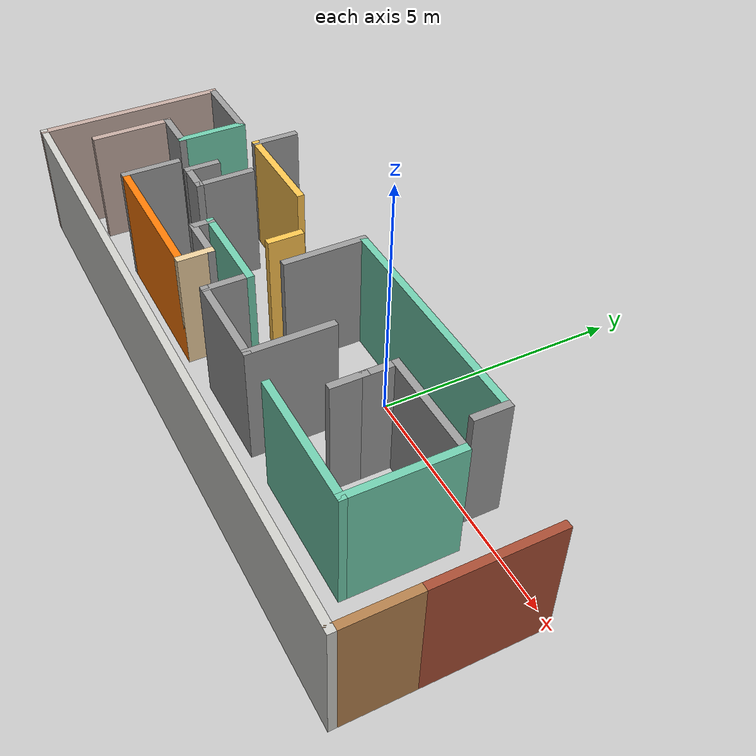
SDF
<?xml version='1.0'?>
<sdf version='1.7'>
  <model name='buiilding'>
    <pose>-1.53307 -1.4404 0 0 -0 0</pose>
    <link name='Wall_0'>
      <collision name='Wall_0_Collision'>
        <geometry>
          <box>
            <size>1.25 0.15 2.5</size>
          </box>
        </geometry>
        <pose>0 0 1.25 0 -0 0</pose>
      </collision>
      <visual name='Wall_0_Visual'>
        <pose>0 0 1.25 0 -0 0</pose>
        <geometry>
          <box>
            <size>1.25 0.15 2.5</size>
          </box>
        </geometry>
        <material>
          <script>
            <uri>file://media/materials/scripts/gazebo.material</uri>
            <name>Gazebo/Grey</name>
          </script>
          <ambient>1 1 1 1</ambient>
        </material>
        <meta>
          <layer>0</layer>
        </meta>
      </visual>
      <pose>-4.45693 -0.789605 0 0 -0 -1.5708</pose>
    </link>
    <link name='Wall_1'>
      <collision name='Wall_1_Collision'>
        <geometry>
          <box>
            <size>3.25 0.15 2.5</size>
          </box>
        </geometry>
        <pose>0 0 1.25 0 -0 0</pose>
      </collision>
      <visual name='Wall_1_Visual'>
        <pose>0 0 1.25 0 -0 0</pose>
        <geometry>
          <box>
            <size>3.25 0.15 2.5</size>
          </box>
        </geometry>
        <material>
          <script>
            <uri>file://media/materials/scripts/gazebo.material</uri>
            <name>Gazebo/Grey</name>
          </script>
          <ambient>0.996078 0.47451 0.0196078 1</ambient>
        </material>
        <meta>
          <layer>0</layer>
        </meta>
      </visual>
      <pose>-2.90693 -1.3396 0 0 -0 0</pose>
    </link>
    <link name='Wall_10'>
      <collision name='Wall_10_Collision'>
        <geometry>
          <box>
            <size>0.75 0.15 2.5</size>
          </box>
        </geometry>
        <pose>0 0 1.25 0 -0 0</pose>
      </collision>
      <visual name='Wall_10_Visual'>
        <pose>0 0 1.25 0 -0 0</pose>
        <geometry>
          <box>
            <size>0.75 0.15 2.5</size>
          </box>
        </geometry>
        <material>
          <script>
            <uri>file://media/materials/scripts/gazebo.material</uri>
            <name>Gazebo/Grey</name>
          </script>
          <ambient>1 0.764706 0.305882 1</ambient>
        </material>
        <meta>
          <layer>0</layer>
        </meta>
      </visual>
      <pose>-1.10693 0.660395 0 0 -0 1.5708</pose>
    </link>
    <link name='Wall_12'>
      <collision name='Wall_12_Collision'>
        <geometry>
          <box>
            <size>1.25 0.15 2.5</size>
          </box>
        </geometry>
        <pose>0 0 1.25 0 -0 0</pose>
      </collision>
      <visual name='Wall_12_Visual'>
        <pose>0 0 1.25 0 -0 0</pose>
        <geometry>
          <box>
            <size>1.25 0.15 2.5</size>
          </box>
        </geometry>
        <material>
          <script>
            <uri>file://media/materials/scripts/gazebo.material</uri>
            <name>Gazebo/Grey</name>
          </script>
          <ambient>1 1 1 1</ambient>
        </material>
        <meta>
          <layer>0</layer>
        </meta>
      </visual>
      <pose>-3.45693 0.410395 0 0 -0 -1.5708</pose>
    </link>
    <link name='Wall_13'>
      <collision name='Wall_13_Collision'>
        <geometry>
          <box>
            <size>0.75 0.15 2.5</size>
          </box>
        </geometry>
        <pose>0 0 1.25 0 -0 0</pose>
      </collision>
      <visual name='Wall_13_Visual'>
        <pose>0 0 1.25 0 -0 0</pose>
        <geometry>
          <box>
            <size>0.75 0.15 2.5</size>
          </box>
        </geometry>
        <material>
          <script>
            <uri>file://media/materials/scripts/gazebo.material</uri>
            <name>Gazebo/Grey</name>
          </script>
          <ambient>1 1 1 1</ambient>
        </material>
        <meta>
          <layer>0</layer>
        </meta>
      </visual>
      <pose>-3.75693 -0.139605 0 0 -0 3.14159</pose>
    </link>
    <link name='Wall_14'>
      <collision name='Wall_14_Collision'>
        <geometry>
          <box>
            <size>0.75 0.15 2.5</size>
          </box>
        </geometry>
        <pose>0 0 1.25 0 -0 0</pose>
      </collision>
      <visual name='Wall_14_Visual'>
        <pose>0 0 1.25 0 -0 0</pose>
        <geometry>
          <box>
            <size>0.75 0.15 2.5</size>
          </box>
        </geometry>
        <material>
          <script>
            <uri>file://media/materials/scripts/gazebo.material</uri>
            <name>Gazebo/Grey</name>
          </script>
          <ambient>1 1 1 1</ambient>
        </material>
        <meta>
          <layer>0</layer>
        </meta>
      </visual>
      <pose>-4.05693 0.160395 0 0 -0 1.5708</pose>
    </link>
    <link name='Wall_19'>
      <collision name='Wall_19_Collision'>
        <geometry>
          <box>
            <size>0.75 0.15 2.5</size>
          </box>
        </geometry>
        <pose>0 0 1.25 0 -0 0</pose>
      </collision>
      <visual name='Wall_19_Visual'>
        <pose>0 0 1.25 0 -0 0</pose>
        <geometry>
          <box>
            <size>0.75 0.15 2.5</size>
          </box>
        </geometry>
        <material>
          <script>
            <uri>file://media/materials/scripts/gazebo.material</uri>
            <name>Gazebo/Grey</name>
          </script>
          <ambient>1 1 1 1</ambient>
        </material>
        <meta>
          <layer>0</layer>
        </meta>
      </visual>
      <pose>2.82307 -0.029605 0 0 -0 1.5708</pose>
    </link>
    <link name='Wall_2'>
      <collision name='Wall_2_Collision'>
        <geometry>
          <box>
            <size>0.75 0.15 2.5</size>
          </box>
        </geometry>
        <pose>0 0 1.25 0 -0 0</pose>
      </collision>
      <visual name='Wall_2_Visual'>
        <pose>0 0 1.25 0 -0 0</pose>
        <geometry>
          <box>
            <size>0.75 0.15 2.5</size>
          </box>
        </geometry>
        <material>
          <script>
            <uri>file://media/materials/scripts/gazebo.material</uri>
            <name>Gazebo/Grey</name>
          </script>
          <ambient>0.921569 0.807843 0.615686 1</ambient>
        </material>
        <meta>
          <layer>0</layer>
        </meta>
      </visual>
      <pose>-1.35693 -1.0396 0 0 -0 1.5708</pose>
    </link>
    <link name='Wall_20'>
      <collision name='Wall_20_Collision'>
        <geometry>
          <box>
            <size>0.75 0.15 2.5</size>
          </box>
        </geometry>
        <pose>0 0 1.25 0 -0 0</pose>
      </collision>
      <visual name='Wall_20_Visual'>
        <pose>0 0 1.25 0 -0 0</pose>
        <geometry>
          <box>
            <size>0.75 0.15 2.5</size>
          </box>
        </geometry>
        <material>
          <script>
            <uri>file://media/materials/scripts/gazebo.material</uri>
            <name>Gazebo/Grey</name>
          </script>
          <ambient>1 1 1 1</ambient>
        </material>
        <meta>
          <layer>0</layer>
        </meta>
      </visual>
      <pose>2.82307 0.570395 0 0 -0 1.5708</pose>
    </link>
    <link name='Wall_21'>
      <collision name='Wall_21_Collision'>
        <geometry>
          <box>
            <size>2.25 0.15 2.5</size>
          </box>
        </geometry>
        <pose>0 0 1.25 0 -0 0</pose>
      </collision>
      <visual name='Wall_21_Visual'>
        <pose>0 0 1.25 0 -0 0</pose>
        <geometry>
          <box>
            <size>2.25 0.15 2.5</size>
          </box>
        </geometry>
        <material>
          <script>
            <uri>file://media/materials/scripts/gazebo.material</uri>
            <name>Gazebo/Grey</name>
          </script>
          <ambient>1 1 1 1</ambient>
        </material>
        <meta>
          <layer>0</layer>
        </meta>
      </visual>
      <pose>3.87307 0.870395 0 0 -0 0</pose>
    </link>
    <link name='Wall_22'>
      <collision name='Wall_22_Collision'>
        <geometry>
          <box>
            <size>2.25 0.15 2.5</size>
          </box>
        </geometry>
        <pose>0 0 1.25 0 -0 0</pose>
      </collision>
      <visual name='Wall_22_Visual'>
        <pose>0 0 1.25 0 -0 0</pose>
        <geometry>
          <box>
            <size>2.25 0.15 2.5</size>
          </box>
        </geometry>
        <material>
          <script>
            <uri>file://media/materials/scripts/gazebo.material</uri>
            <name>Gazebo/Grey</name>
          </script>
          <ambient>0.435294 0.796078 0.67451 1</ambient>
        </material>
        <meta>
          <layer>0</layer>
        </meta>
      </visual>
      <pose>4.92307 -0.179605 0 0 -0 -1.5708</pose>
    </link>
    <link name='Wall_23'>
      <collision name='Wall_23_Collision'>
        <geometry>
          <box>
            <size>2.75 0.15 2.5</size>
          </box>
        </geometry>
        <pose>0 0 1.25 0 -0 0</pose>
      </collision>
      <visual name='Wall_23_Visual'>
        <pose>0 0 1.25 0 -0 0</pose>
        <geometry>
          <box>
            <size>2.75 0.15 2.5</size>
          </box>
        </geometry>
        <material>
          <script>
            <uri>file://media/materials/scripts/gazebo.material</uri>
            <name>Gazebo/Grey</name>
          </script>
          <ambient>0.435294 0.796078 0.67451 1</ambient>
        </material>
        <meta>
          <layer>0</layer>
        </meta>
      </visual>
      <pose>3.62307 -1.22961 0 0 -0 3.14159</pose>
    </link>
    <link name='Wall_25'>
      <collision name='Wall_25_Collision'>
        <geometry>
          <box>
            <size>1.75 0.15 2.5</size>
          </box>
        </geometry>
        <pose>0 0 1.25 0 -0 0</pose>
      </collision>
      <visual name='Wall_25_Visual'>
        <pose>0 0 1.25 0 -0 0</pose>
        <geometry>
          <box>
            <size>1.75 0.15 2.5</size>
          </box>
        </geometry>
        <material>
          <script>
            <uri>file://media/materials/scripts/gazebo.material</uri>
            <name>Gazebo/Grey</name>
          </script>
          <ambient>1 1 1 1</ambient>
        </material>
        <meta>
          <layer>0</layer>
        </meta>
      </visual>
      <pose>-0.4 1.15176 0 0 -0 1.5708</pose>
    </link>
    <link name='Wall_26'>
      <collision name='Wall_26_Collision'>
        <geometry>
          <box>
            <size>5 0.15 2.5</size>
          </box>
        </geometry>
        <pose>0 0 1.25 0 -0 0</pose>
      </collision>
      <visual name='Wall_26_Visual'>
        <pose>0 0 1.25 0 -0 0</pose>
        <geometry>
          <box>
            <size>5 0.15 2.5</size>
          </box>
        </geometry>
        <material>
          <script>
            <uri>file://media/materials/scripts/gazebo.material</uri>
            <name>Gazebo/Grey</name>
          </script>
          <ambient>0.435294 0.796078 0.67451 1</ambient>
        </material>
        <meta>
          <layer>0</layer>
        </meta>
      </visual>
      <pose>2.025 1.95176 0 0 -0 0</pose>
    </link>
    <link name='Wall_27'>
      <collision name='Wall_27_Collision'>
        <geometry>
          <box>
            <size>0.75 0.15 2.5</size>
          </box>
        </geometry>
        <pose>0 0 1.25 0 -0 0</pose>
      </collision>
      <visual name='Wall_27_Visual'>
        <pose>0 0 1.25 0 -0 0</pose>
        <geometry>
          <box>
            <size>0.75 0.15 2.5</size>
          </box>
        </geometry>
        <material>
          <script>
            <uri>file://media/materials/scripts/gazebo.material</uri>
            <name>Gazebo/Grey</name>
          </script>
          <ambient>1 1 1 1</ambient>
        </material>
        <meta>
          <layer>0</layer>
        </meta>
      </visual>
      <pose>4.45 1.65176 0 0 -0 -1.5708</pose>
    </link>
    <link name='Wall_29'>
      <collision name='Wall_29_Collision'>
        <geometry>
          <box>
            <size>2.5 0.15 2.5</size>
          </box>
        </geometry>
        <pose>0 0 1.25 0 -0 0</pose>
      </collision>
      <visual name='Wall_29_Visual'>
        <pose>0 0 1.25 0 -0 0</pose>
        <geometry>
          <box>
            <size>2.5 0.15 2.5</size>
          </box>
        </geometry>
        <material>
          <script>
            <uri>file://media/materials/scripts/gazebo.material</uri>
            <name>Gazebo/Bricks</name>
          </script>
          <ambient>0.435294 0.796078 0.67451 1</ambient>
        </material>
        <meta>
          <layer>0</layer>
        </meta>
      </visual>
      <pose>6.8 0.176763 0 0 -0 -1.5708</pose>
    </link>
    <link name='Wall_3'>
      <collision name='Wall_3_Collision'>
        <geometry>
          <box>
            <size>1 0.15 2.5</size>
          </box>
        </geometry>
        <pose>0 0 1.25 0 -0 0</pose>
      </collision>
      <visual name='Wall_3_Visual'>
        <pose>0 0 1.25 0 -0 0</pose>
        <geometry>
          <box>
            <size>1 0.15 2.5</size>
          </box>
        </geometry>
        <material>
          <script>
            <uri>file://media/materials/scripts/gazebo.material</uri>
            <name>Gazebo/Grey</name>
          </script>
          <ambient>1 1 1 1</ambient>
        </material>
        <meta>
          <layer>0</layer>
        </meta>
      </visual>
      <pose>-1.78193 -0.739605 0 0 -0 3.14159</pose>
    </link>
    <link name='Wall_30'>
      <collision name='Wall_30_Collision'>
        <geometry>
          <box>
            <size>1.5 0.15 2.5</size>
          </box>
        </geometry>
        <pose>0 0 1.25 0 -0 0</pose>
      </collision>
      <visual name='Wall_30_Visual'>
        <pose>0 0 1.25 0 -0 0</pose>
        <geometry>
          <box>
            <size>1.5 0.15 2.5</size>
          </box>
        </geometry>
        <material>
          <script>
            <uri>file://media/materials/scripts/gazebo.material</uri>
            <name>Gazebo/Wood</name>
          </script>
          <ambient>0.435294 0.796078 0.67451 1</ambient>
        </material>
        <meta>
          <layer>0</layer>
        </meta>
      </visual>
      <pose>6.8 -1.67324 0 0 -0 -1.5708</pose>
    </link>
    <link name='Wall_31'>
      <collision name='Wall_31_Collision'>
        <geometry>
          <box>
            <size>13.75 0.15 2.5</size>
          </box>
        </geometry>
        <pose>0 0 1.25 0 -0 0</pose>
      </collision>
      <visual name='Wall_31_Visual'>
        <pose>0 0 1.25 0 -0 0</pose>
        <geometry>
          <box>
            <size>13.75 0.15 2.5</size>
          </box>
        </geometry>
        <material>
          <script>
            <uri>file://media/materials/scripts/gazebo.material</uri>
            <name>Gazebo/CeilingTiled</name>
          </script>
          <ambient>1 0.764706 0.305882 1</ambient>
        </material>
        <meta>
          <layer>0</layer>
        </meta>
      </visual>
      <pose>0 -2.34824 0 0 -0 3.14159</pose>
    </link>
    <link name='Wall_32'>
      <collision name='Wall_32_Collision'>
        <geometry>
          <box>
            <size>4 0.15 2.5</size>
          </box>
        </geometry>
        <pose>0 0 1.25 0 -0 0</pose>
      </collision>
      <visual name='Wall_32_Visual'>
        <pose>0 0 1.25 0 -0 0</pose>
        <geometry>
          <box>
            <size>4 0.15 2.5</size>
          </box>
        </geometry>
        <material>
          <script>
            <uri>file://media/materials/scripts/gazebo.material</uri>
            <name>Gazebo/Grey</name>
          </script>
          <ambient>0.760784 0.662745 0.627451 1</ambient>
        </material>
        <meta>
          <layer>0</layer>
        </meta>
      </visual>
      <pose>-6.8 -0.423237 0 0 -0 1.5708</pose>
    </link>
    <link name='Wall_33'>
      <collision name='Wall_33_Collision'>
        <geometry>
          <box>
            <size>1.75 0.15 2.5</size>
          </box>
        </geometry>
        <pose>0 0 1.25 0 -0 0</pose>
      </collision>
      <visual name='Wall_33_Visual'>
        <pose>0 0 1.25 0 -0 0</pose>
        <geometry>
          <box>
            <size>1.75 0.15 2.5</size>
          </box>
        </geometry>
        <material>
          <script>
            <uri>file://media/materials/scripts/gazebo.material</uri>
            <name>Gazebo/Grey</name>
          </script>
          <ambient>1 1 1 1</ambient>
        </material>
        <meta>
          <layer>0</layer>
        </meta>
      </visual>
      <pose>-6 1.50176 0 0 -0 0</pose>
    </link>
    <link name='Wall_34'>
      <collision name='Wall_34_Collision'>
        <geometry>
          <box>
            <size>1.5 0.15 2.5</size>
          </box>
        </geometry>
        <pose>0 0 1.25 0 -0 0</pose>
      </collision>
      <visual name='Wall_34_Visual'>
        <pose>0 0 1.25 0 -0 0</pose>
        <geometry>
          <box>
            <size>1.5 0.15 2.5</size>
          </box>
        </geometry>
        <material>
          <script>
            <uri>file://media/materials/scripts/gazebo.material</uri>
            <name>Gazebo/Grey</name>
          </script>
          <ambient>0.435294 0.796078 0.67451 1</ambient>
        </material>
        <meta>
          <layer>0</layer>
        </meta>
      </visual>
      <pose>-5.2 0.826763 0 0 -0 -1.5708</pose>
    </link>
    <link name='Wall_35'>
      <collision name='Wall_35_Collision'>
        <geometry>
          <box>
            <size>1 0.15 2.5</size>
          </box>
        </geometry>
        <pose>0 0 1.25 0 -0 0</pose>
      </collision>
      <visual name='Wall_35_Visual'>
        <pose>0 0 1.25 0 -0 0</pose>
        <geometry>
          <box>
            <size>1 0.15 2.5</size>
          </box>
        </geometry>
        <material>
          <script>
            <uri>file://media/materials/scripts/gazebo.material</uri>
            <name>Gazebo/Grey</name>
          </script>
          <ambient>1 1 1 1</ambient>
        </material>
        <meta>
          <layer>0</layer>
        </meta>
      </visual>
      <pose>-5.625 0.151763 0 0 -0 3.14159</pose>
    </link>
    <link name='Wall_36'>
      <collision name='Wall_36_Collision'>
        <geometry>
          <box>
            <size>1.75 0.15 2.5</size>
          </box>
        </geometry>
        <pose>0 0 1.25 0 -0 0</pose>
      </collision>
      <visual name='Wall_36_Visual'>
        <pose>0 0 1.25 0 -0 0</pose>
        <geometry>
          <box>
            <size>1.75 0.15 2.5</size>
          </box>
        </geometry>
        <material>
          <script>
            <uri>file://media/materials/scripts/gazebo.material</uri>
            <name>Gazebo/Grey</name>
          </script>
          <ambient>0.760784 0.662745 0.627451 1</ambient>
        </material>
        <meta>
          <layer>0</layer>
        </meta>
      </visual>
      <pose>-6.05 -0.648237 0 0 -0 -1.5708</pose>
    </link>
    <link name='Wall_38'>
      <collision name='Wall_38_Collision'>
        <geometry>
          <box>
            <size>2.25 0.15 2.5</size>
          </box>
        </geometry>
        <pose>0 0 1.25 0 -0 0</pose>
      </collision>
      <visual name='Wall_38_Visual'>
        <pose>0 0 1.25 0 -0 0</pose>
        <geometry>
          <box>
            <size>2.25 0.15 2.5</size>
          </box>
        </geometry>
        <material>
          <script>
            <uri>file://media/materials/scripts/gazebo.material</uri>
            <name>Gazebo/Grey</name>
          </script>
          <ambient>1 0.764706 0.305882 1</ambient>
        </material>
        <meta>
          <layer>0</layer>
        </meta>
      </visual>
      <pose>-3.30045 1.49824 0 0 -0 3.14159</pose>
    </link>
    <link name='Wall_39'>
      <collision name='Wall_39_Collision'>
        <geometry>
          <box>
            <size>1 0.15 2.5</size>
          </box>
        </geometry>
        <pose>0 0 1.25 0 -0 0</pose>
      </collision>
      <visual name='Wall_39_Visual'>
        <pose>0 0 1.25 0 -0 0</pose>
        <geometry>
          <box>
            <size>1 0.15 2.5</size>
          </box>
        </geometry>
        <material>
          <script>
            <uri>file://media/materials/scripts/gazebo.material</uri>
            <name>Gazebo/Grey</name>
          </script>
          <ambient>1 1 1 1</ambient>
        </material>
        <meta>
          <layer>0</layer>
        </meta>
      </visual>
      <pose>-4.35045 1.92324 0 0 -0 1.5708</pose>
    </link>
    <link name='Wall_4'>
      <collision name='Wall_4_Collision'>
        <geometry>
          <box>
            <size>0.5 0.15 2.5</size>
          </box>
        </geometry>
        <pose>0 0 1.25 0 -0 0</pose>
      </collision>
      <visual name='Wall_4_Visual'>
        <pose>0 0 1.25 0 -0 0</pose>
        <geometry>
          <box>
            <size>0.5 0.15 2.5</size>
          </box>
        </geometry>
        <material>
          <script>
            <uri>file://media/materials/scripts/gazebo.material</uri>
            <name>Gazebo/Grey</name>
          </script>
          <ambient>1 1 1 1</ambient>
        </material>
        <meta>
          <layer>0</layer>
        </meta>
      </visual>
      <pose>-2.20693 -0.564605 0 0 -0 1.5708</pose>
    </link>
    <link name='Wall_5'>
      <collision name='Wall_5_Collision'>
        <geometry>
          <box>
            <size>2 0.15 2.5</size>
          </box>
        </geometry>
        <pose>0 0 1.25 0 -0 0</pose>
      </collision>
      <visual name='Wall_5_Visual'>
        <pose>0 0 1.25 0 -0 0</pose>
        <geometry>
          <box>
            <size>2 0.15 2.5</size>
          </box>
        </geometry>
        <material>
          <script>
            <uri>file://media/materials/scripts/gazebo.material</uri>
            <name>Gazebo/Grey</name>
          </script>
          <ambient>0.435294 0.796078 0.67451 1</ambient>
        </material>
        <meta>
          <layer>0</layer>
        </meta>
      </visual>
      <pose>-1.28193 -0.389605 0 0 -0 0</pose>
    </link>
    <link name='Wall_6'>
      <collision name='Wall_6_Collision'>
        <geometry>
          <box>
            <size>1 0.15 2.5</size>
          </box>
        </geometry>
        <pose>0 0 1.25 0 -0 0</pose>
      </collision>
      <visual name='Wall_6_Visual'>
        <pose>0 0 1.25 0 -0 0</pose>
        <geometry>
          <box>
            <size>1 0.15 2.5</size>
          </box>
        </geometry>
        <material>
          <script>
            <uri>file://media/materials/scripts/gazebo.material</uri>
            <name>Gazebo/Grey</name>
          </script>
          <ambient>1 1 1 1</ambient>
        </material>
        <meta>
          <layer>0</layer>
        </meta>
      </visual>
      <pose>-0.356933 -0.814605 0 0 -0 -1.5708</pose>
    </link>
    <link name='Wall_7'>
      <collision name='Wall_7_Collision'>
        <geometry>
          <box>
            <size>2 0.15 2.5</size>
          </box>
        </geometry>
        <pose>0 0 1.25 0 -0 0</pose>
      </collision>
      <visual name='Wall_7_Visual'>
        <pose>0 0 1.25 0 -0 0</pose>
        <geometry>
          <box>
            <size>2 0.15 2.5</size>
          </box>
        </geometry>
        <material>
          <script>
            <uri>file://media/materials/scripts/gazebo.material</uri>
            <name>Gazebo/Grey</name>
          </script>
          <ambient>1 1 1 1</ambient>
        </material>
        <meta>
          <layer>0</layer>
        </meta>
      </visual>
      <pose>0.568067 -1.23961 0 0 -0 0</pose>
    </link>
    <link name='Wall_8'>
      <collision name='Wall_8_Collision'>
        <geometry>
          <box>
            <size>1.75 0.15 2.5</size>
          </box>
        </geometry>
        <pose>0 0 1.25 0 -0 0</pose>
      </collision>
      <visual name='Wall_8_Visual'>
        <pose>0 0 1.25 0 -0 0</pose>
        <geometry>
          <box>
            <size>1.75 0.15 2.5</size>
          </box>
        </geometry>
        <material>
          <script>
            <uri>file://media/materials/scripts/gazebo.material</uri>
            <name>Gazebo/Grey</name>
          </script>
          <ambient>1 1 1 1</ambient>
        </material>
        <meta>
          <layer>0</layer>
        </meta>
      </visual>
      <pose>1.49307 -0.439605 0 0 -0 1.5708</pose>
    </link>
    <static>1</static>
  </model>
</sdf>
